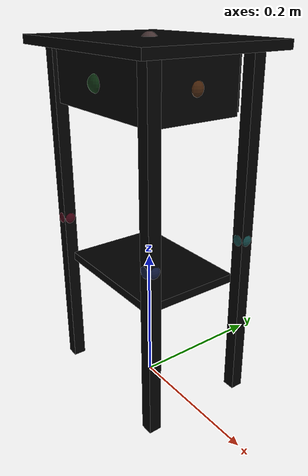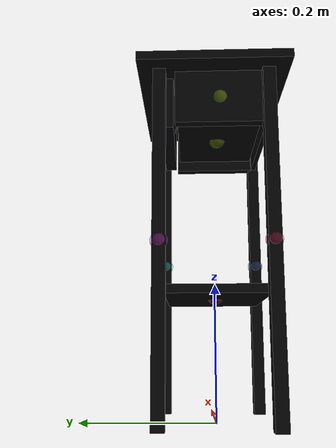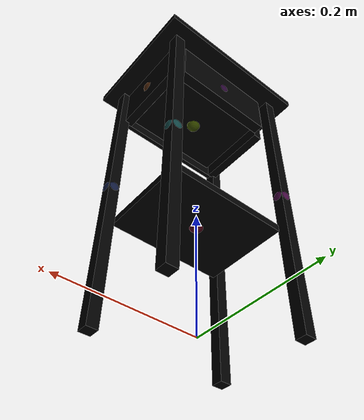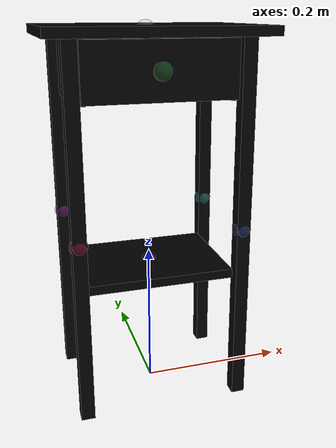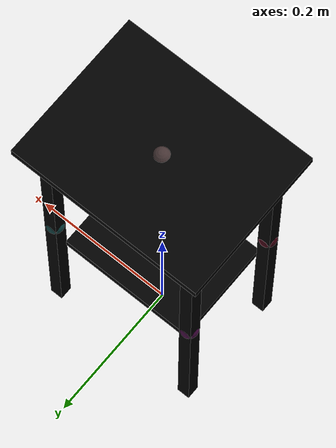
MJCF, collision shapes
<mujoco model="nightstand_2">
  <custom>
    <numeric data="-0.325755 -0.178171 0.006066 1.0 -0.0 0.0 0.0" name="0_part0_initpos" />
    <numeric data="-0.051426 -0.156712 0.005196 0.707105 0.707105 -0.001625 -0.001625" name="9_part9_initpos" />
    <numeric data="0.168591 0.026762 0.007734 0.707089 -0.005005 0.707089 0.005005" name="8_part8_initpos" />
    <numeric data="-0.029056 0.175695 0.008391 0.707107 -0.707107 -0.0 0.0" name="7_part7_initpos" />
    <numeric data="-0.232284 0.056541 0.005655 0.70663 -0.025975 -0.70663 -0.025974" name="6_part6_initpos" />
    <numeric data="0.426967 0.059525 0.006066 0.0 -0.998287 -0.058513 -0.0" name="5_part5_initpos" />
    <numeric data="0.087723 0.406904 0.00969 0.707107 4e-06 0.707107 -4e-06" name="4_part4_initpos" />
    <numeric data="-0.417659 0.288586 0.00969 0.707106 0.000879 0.707106 -0.000879" name="3_part3_initpos" />
    <numeric data="-0.457292 0.40313 0.008645 -3e-06 -0.707107 3e-06 -0.707107" name="2_part2_initpos" />
    <numeric data="-0.043002 0.021218 0.00297 1.0 0.0 -0.0 0.0" name="10_part10_initpos" />
    <numeric data="0.128936 0.314328 0.00909 0.012357 -0.706999 -0.012357 -0.706999" name="1_part1_initpos" />
  </custom>
  <asset>
    <mesh file="nightstand_2/0.stl" name="part0" scale="0.0006 0.0006 0.0006" />
    <mesh file="nightstand_2/9.stl" name="part9" scale="0.0006 0.0006 0.0006" />
    <mesh file="nightstand_2/8.stl" name="part8" scale="0.0006 0.0006 0.0006" />
    <mesh file="nightstand_2/7.stl" name="part7" scale="0.0006 0.0006 0.0006" />
    <mesh file="nightstand_2/6.stl" name="part6" scale="0.0006 0.0006 0.0006" />
    <mesh file="nightstand_2/5.stl" name="part5" scale="0.0006 0.0006 0.0006" />
    <mesh file="nightstand_2/4.stl" name="part4" scale="0.0006 0.0006 0.0006" />
    <mesh file="nightstand_2/3.stl" name="part3" scale="0.0006 0.0006 0.0006" />
    <mesh file="nightstand_2/2.stl" name="part2" scale="0.0006 0.0006 0.0006" />
    <mesh file="nightstand_2/10.stl" name="part10" scale="0.0006 0.0006 0.0006" />
    <mesh file="nightstand_2/1.stl" name="part1" scale="0.0006 0.0006 0.0006" />
  </asset>
  <worldbody><body name="combined_body" pos="0 0 0.1828399963378906" quat="1 0 0 0"><geom conaffinity="0" contype="0" density="0" mesh="part0" name="0_part0_mesh" pos="-7.8e-10 1.2e-10 -1.2e-10" rgba="0.82 0.71 0.55 1" type="mesh" quat="1 0 0 0" />
      <geom density="50" name="noviz_collision_0_part0_0" pos="-7.8e-10 1.2e-10 -1.2e-10" quat="1 0 0 0" rgba="0 0 0 0" size="0.09648000000000001 0.072141 0.00609567" solref="0.001 1" type="box" />
      <site name="0_part0_horizontal_radius_site" pos="-7.8e-10 1.2e-10 -1.2e-10" quat="1 0 0 0" rgba="0 0 0 0" size="0.0006" />
      <site name="0_part0_top_site" pos="-7.8e-10 1.2e-10 -1.2e-10" quat="1 0 0 0" rgba="0 0 0 0" size="0.0006" />
      <site name="0_part0_bottom_site" pos="-7.8e-10 1.2e-10 -1.2e-10" quat="1 0 0 0" rgba="0 0 0 0" size="0.0006" />
      <site name="0_part0_corner_site8" pos="-7.8e-10 1.2e-10 -1.2e-10" quat="1 0 0 0" rgba="0 0 0 0" size="0.012" />
      <site name="0_part0_corner_site7" pos="-7.8e-10 1.2e-10 -1.2e-10" quat="1 0 0 0" rgba="0 0 0 0" size="0.012" />
      <site name="0_part0_corner_site6" pos="-7.8e-10 1.2e-10 -1.2e-10" quat="1 0 0 0" rgba="0 0 0 0" size="0.012" />
      <site name="0_part0_corner_site5" pos="-7.8e-10 1.2e-10 -1.2e-10" quat="1 0 0 0" rgba="0 0 0 0" size="0.012" />
      <site name="0_part0_corner_site4" pos="-7.8e-10 1.2e-10 -1.2e-10" quat="1 0 0 0" rgba="0 0 0 0" size="0.012" />
      <site name="0_part0_corner_site3" pos="-7.8e-10 1.2e-10 -1.2e-10" quat="1 0 0 0" rgba="0 0 0 0" size="0.012" />
      <site name="0_part0_corner_site2" pos="-7.8e-10 1.2e-10 -1.2e-10" quat="1 0 0 0" rgba="0 0 0 0" size="0.012" />
      <site name="0_part0_corner_site1" pos="-7.8e-10 1.2e-10 -1.2e-10" quat="1 0 0 0" rgba="0 0 0 0" size="0.012" />
      <site name="legfrontleft-fllorbotleft,0,conn_site1" pos="-7.8e-10 1.2e-10 -1.2e-10" quat="1 0 0 0" rgba="0.9019 0.0980 0.2941 0.3" size="0.012" />
    <geom conaffinity="0" contype="0" density="0" mesh="part9" name="9_part9_mesh" pos="1.62e-09 -0.07391399862 0.26822400366000004" rgba="0.82 0.71 0.55 1" type="mesh" quat="1 0 0 0" />
      <geom density="50" name="noviz_collision_9_part9_0" pos="1.62e-09 -0.07391399862 0.26822400366000004" quat="1 0 0 0" rgba="0 0 0 0" size="0.096 0.0036 0.036" solref="0.001 1" type="box" />
      <site name="9_part9_horizontal_radius_site" pos="1.62e-09 -0.07391399862 0.26822400366000004" quat="1 0 0 0" rgba="0 0 0 0" size="0.0006" />
      <site name="9_part9_top_site" pos="1.62e-09 -0.07391399862 0.26822400366000004" quat="1 0 0 0" rgba="0 0 0 0" size="0.0006" />
      <site name="9_part9_bottom_site" pos="1.62e-09 -0.07391399862 0.26822400366000004" quat="1 0 0 0" rgba="0 0 0 0" size="0.0006" />
      <site name="9_part9_corner_site8" pos="1.62e-09 -0.07391399862 0.26822400366000004" quat="1 0 0 0" rgba="0 0 0 0" size="0.012" />
      <site name="9_part9_corner_site7" pos="1.62e-09 -0.07391399862 0.26822400366000004" quat="1 0 0 0" rgba="0 0 0 0" size="0.012" />
      <site name="9_part9_corner_site6" pos="1.62e-09 -0.07391399862 0.26822400366000004" quat="1 0 0 0" rgba="0 0 0 0" size="0.012" />
      <site name="9_part9_corner_site5" pos="1.62e-09 -0.07391399862 0.26822400366000004" quat="1 0 0 0" rgba="0 0 0 0" size="0.012" />
      <site name="9_part9_corner_site4" pos="1.62e-09 -0.07391399862 0.26822400366000004" quat="1 0 0 0" rgba="0 0 0 0" size="0.012" />
      <site name="9_part9_corner_site3" pos="1.62e-09 -0.07391399862 0.26822400366000004" quat="1 0 0 0" rgba="0 0 0 0" size="0.012" />
      <site name="9_part9_corner_site2" pos="1.62e-09 -0.07391399862 0.26822400366000004" quat="1 0 0 0" rgba="0 0 0 0" size="0.012" />
      <site name="9_part9_corner_site1" pos="1.62e-09 -0.07391399862 0.26822400366000004" quat="1 0 0 0" rgba="0 0 0 0" size="0.012" />
      <site name="frontdrawer-bottom,0,conn_site1" pos="1.62e-09 -0.07391399862 0.26822400366000004" quat="1 0 0 0" rgba="0.2352 0.7058 0.2941 0.3" size="0.012" />
      <site name="front-leftleg,0,conn_site1" pos="1.62e-09 -0.07391399862 0.26822400366000004" quat="1 0 0 0" rgba="1.0 0.8823 0.0980 0.3" size="0.012" />
      <site name="front-rightleg,0,conn_site1" pos="1.62e-09 -0.07391399862 0.26822400366000004" quat="1 0 0 0" rgba="0.2627 0.3882 0.8470 0.3" size="0.012" />
    <geom conaffinity="0" contype="0" density="0" mesh="part8" name="8_part8_mesh" pos="0.09715499658 -0.00609599646 0.26822400366000004" rgba="0.82 0.71 0.55 1" type="mesh" quat="1 0 0 0" />
      <geom density="50" name="noviz_collision_8_part8_0" pos="0.09715499658 -0.00609599646 0.26822400366000004" quat="1 0 0 0" rgba="0 0 0 0" size="0.0075 0.063 0.0381" solref="0.001 1" type="box" />
      <site name="8_part8_horizontal_radius_site" pos="0.09715499658 -0.00609599646 0.26822400366000004" quat="1 0 0 0" rgba="0 0 0 0" size="0.0006" />
      <site name="8_part8_top_site" pos="0.09715499658 -0.00609599646 0.26822400366000004" quat="1 0 0 0" rgba="0 0 0 0" size="0.0006" />
      <site name="8_part8_bottom_site" pos="0.09715499658 -0.00609599646 0.26822400366000004" quat="1 0 0 0" rgba="0 0 0 0" size="0.0006" />
      <site name="8_part8_corner_site8" pos="0.09715499658 -0.00609599646 0.26822400366000004" quat="1 0 0 0" rgba="0 0 0 0" size="0.012" />
      <site name="8_part8_corner_site7" pos="0.09715499658 -0.00609599646 0.26822400366000004" quat="1 0 0 0" rgba="0 0 0 0" size="0.012" />
      <site name="8_part8_corner_site6" pos="0.09715499658 -0.00609599646 0.26822400366000004" quat="1 0 0 0" rgba="0 0 0 0" size="0.012" />
      <site name="8_part8_corner_site5" pos="0.09715499658 -0.00609599646 0.26822400366000004" quat="1 0 0 0" rgba="0 0 0 0" size="0.012" />
      <site name="8_part8_corner_site4" pos="0.09715499658 -0.00609599646 0.26822400366000004" quat="1 0 0 0" rgba="0 0 0 0" size="0.012" />
      <site name="8_part8_corner_site3" pos="0.09715499658 -0.00609599646 0.26822400366000004" quat="1 0 0 0" rgba="0 0 0 0" size="0.012" />
      <site name="8_part8_corner_site2" pos="0.09715499658 -0.00609599646 0.26822400366000004" quat="1 0 0 0" rgba="0 0 0 0" size="0.012" />
      <site name="8_part8_corner_site1" pos="0.09715499658 -0.00609599646 0.26822400366000004" quat="1 0 0 0" rgba="0 0 0 0" size="0.012" />
      <site name="rightwall-bottom,0,conn_site1" pos="0.09715499658 -0.00609599646 0.26822400366000004" quat="1 0 0 0" rgba="0.9607 0.5098 0.1921 0.3" size="0.012" />
    <geom conaffinity="0" contype="0" density="0" mesh="part7" name="7_part7_mesh" pos="1.62e-09 0.0681989994 0.26822400366000004" rgba="0.82 0.71 0.55 1" type="mesh" quat="1 0 0 0" />
      <geom density="50" name="noviz_collision_7_part7_0" pos="1.62e-09 0.0681989994 0.26822400366000004" quat="1 0 0 0" rgba="0 0 0 0" size="0.087 0.0087 0.0375" solref="0.001 1" type="box" />
      <site name="7_part7_horizontal_radius_site" pos="1.62e-09 0.0681989994 0.26822400366000004" quat="1 0 0 0" rgba="0 0 0 0" size="0.0006" />
      <site name="7_part7_top_site" pos="1.62e-09 0.0681989994 0.26822400366000004" quat="1 0 0 0" rgba="0 0 0 0" size="0.0006" />
      <site name="7_part7_bottom_site" pos="1.62e-09 0.0681989994 0.26822400366000004" quat="1 0 0 0" rgba="0 0 0 0" size="0.0006" />
      <site name="7_part7_corner_site8" pos="1.62e-09 0.0681989994 0.26822400366000004" quat="1 0 0 0" rgba="0 0 0 0" size="0.012" />
      <site name="7_part7_corner_site7" pos="1.62e-09 0.0681989994 0.26822400366000004" quat="1 0 0 0" rgba="0 0 0 0" size="0.012" />
      <site name="7_part7_corner_site6" pos="1.62e-09 0.0681989994 0.26822400366000004" quat="1 0 0 0" rgba="0 0 0 0" size="0.012" />
      <site name="7_part7_corner_site5" pos="1.62e-09 0.0681989994 0.26822400366000004" quat="1 0 0 0" rgba="0 0 0 0" size="0.012" />
      <site name="7_part7_corner_site4" pos="1.62e-09 0.0681989994 0.26822400366000004" quat="1 0 0 0" rgba="0 0 0 0" size="0.012" />
      <site name="7_part7_corner_site3" pos="1.62e-09 0.0681989994 0.26822400366000004" quat="1 0 0 0" rgba="0 0 0 0" size="0.012" />
      <site name="7_part7_corner_site2" pos="1.62e-09 0.0681989994 0.26822400366000004" quat="1 0 0 0" rgba="0 0 0 0" size="0.012" />
      <site name="7_part7_corner_site1" pos="1.62e-09 0.0681989994 0.26822400366000004" quat="1 0 0 0" rgba="0 0 0 0" size="0.012" />
      <site name="back-bottom,0,conn_site1" pos="1.62e-09 0.0681989994 0.26822400366000004" quat="1 0 0 0" rgba="0.5686 0.1176 0.7058 0.3" size="0.012" />
      <site name="backwall-rightbackleg,0,conn_site1" pos="1.62e-09 0.0681989994 0.26822400366000004" quat="1 0 0 0" rgba="0.2745 0.9411 0.9411 0.3" size="0.012" />
      <site name="backwall-leftbackleg,0,conn_site1" pos="1.62e-09 0.0681989994 0.26822400366000004" quat="1 0 0 0" rgba="0.9411 0.1960 0.9019 0.3" size="0.012" />
    <geom conaffinity="0" contype="0" density="0" mesh="part6" name="6_part6_mesh" pos="-0.0971549991 -0.00609599646 0.26822400366000004" rgba="0.82 0.71 0.55 1" type="mesh" quat="1 0 0 0" />
      <geom density="50" name="noviz_collision_6_part6_0" pos="-0.0971549991 -0.00609599646 0.26822400366000004" quat="1 0 0 0" rgba="0 0 0 0" size="0.0075 0.063 0.0381" solref="0.001 1" type="box" />
      <site name="6_part6_horizontal_radius_site" pos="-0.0971549991 -0.00609599646 0.26822400366000004" quat="1 0 0 0" rgba="0 0 0 0" size="0.0006" />
      <site name="6_part6_top_site" pos="-0.0971549991 -0.00609599646 0.26822400366000004" quat="1 0 0 0" rgba="0 0 0 0" size="0.0006" />
      <site name="6_part6_bottom_site" pos="-0.0971549991 -0.00609599646 0.26822400366000004" quat="1 0 0 0" rgba="0 0 0 0" size="0.0006" />
      <site name="6_part6_corner_site8" pos="-0.0971549991 -0.00609599646 0.26822400366000004" quat="1 0 0 0" rgba="0 0 0 0" size="0.012" />
      <site name="6_part6_corner_site7" pos="-0.0971549991 -0.00609599646 0.26822400366000004" quat="1 0 0 0" rgba="0 0 0 0" size="0.012" />
      <site name="6_part6_corner_site6" pos="-0.0971549991 -0.00609599646 0.26822400366000004" quat="1 0 0 0" rgba="0 0 0 0" size="0.012" />
      <site name="6_part6_corner_site5" pos="-0.0971549991 -0.00609599646 0.26822400366000004" quat="1 0 0 0" rgba="0 0 0 0" size="0.012" />
      <site name="6_part6_corner_site4" pos="-0.0971549991 -0.00609599646 0.26822400366000004" quat="1 0 0 0" rgba="0 0 0 0" size="0.012" />
      <site name="6_part6_corner_site3" pos="-0.0971549991 -0.00609599646 0.26822400366000004" quat="1 0 0 0" rgba="0 0 0 0" size="0.012" />
      <site name="6_part6_corner_site2" pos="-0.0971549991 -0.00609599646 0.26822400366000004" quat="1 0 0 0" rgba="0 0 0 0" size="0.012" />
      <site name="6_part6_corner_site1" pos="-0.0971549991 -0.00609599646 0.26822400366000004" quat="1 0 0 0" rgba="0 0 0 0" size="0.012" />
      <site name="leftwall-bottom,0,conn_site1" pos="-0.0971549991 -0.00609599646 0.26822400366000004" quat="1 0 0 0" rgba="0.7372 0.9647 0.0470 0.3" size="0.012" />
    <geom conaffinity="0" contype="0" density="0" mesh="part5" name="5_part5_mesh" pos="2.4e-10 0.00228600012 0.31242000366" rgba="0.82 0.71 0.55 1" type="mesh" quat="1 0 0 0" />
      <geom density="50" name="noviz_collision_5_part5_0" pos="2.4e-10 0.00228600012 0.31242000366" quat="1 0 0 0" rgba="0 0 0 0" size="0.13716 0.10668000000000001 0.006096" solref="0.001 1" type="box" />
      <site name="5_part5_horizontal_radius_site" pos="2.4e-10 0.00228600012 0.31242000366" quat="1 0 0 0" rgba="0 0 0 0" size="0.0006" />
      <site name="5_part5_top_site" pos="2.4e-10 0.00228600012 0.31242000366" quat="1 0 0 0" rgba="0 0 0 0" size="0.0006" />
      <site name="5_part5_bottom_site" pos="2.4e-10 0.00228600012 0.31242000366" quat="1 0 0 0" rgba="0 0 0 0" size="0.0006" />
      <site name="5_part5_corner_site8" pos="2.4e-10 0.00228600012 0.31242000366" quat="1 0 0 0" rgba="0 0 0 0" size="0.012" />
      <site name="5_part5_corner_site7" pos="2.4e-10 0.00228600012 0.31242000366" quat="1 0 0 0" rgba="0 0 0 0" size="0.012" />
      <site name="5_part5_corner_site6" pos="2.4e-10 0.00228600012 0.31242000366" quat="1 0 0 0" rgba="0 0 0 0" size="0.012" />
      <site name="5_part5_corner_site5" pos="2.4e-10 0.00228600012 0.31242000366" quat="1 0 0 0" rgba="0 0 0 0" size="0.012" />
      <site name="5_part5_corner_site4" pos="2.4e-10 0.00228600012 0.31242000366" quat="1 0 0 0" rgba="0 0 0 0" size="0.012" />
      <site name="5_part5_corner_site3" pos="2.4e-10 0.00228600012 0.31242000366" quat="1 0 0 0" rgba="0 0 0 0" size="0.012" />
      <site name="5_part5_corner_site2" pos="2.4e-10 0.00228600012 0.31242000366" quat="1 0 0 0" rgba="0 0 0 0" size="0.012" />
      <site name="5_part5_corner_site1" pos="2.4e-10 0.00228600012 0.31242000366" quat="1 0 0 0" rgba="0 0 0 0" size="0.012" />
      <site name="top-leftleg,0,conn_site1" pos="2.4e-10 0.00228600012 0.31242000366" quat="1 0 0 0" rgba="0.9803 0.7450 0.7450 0.3" size="0.012" />
    <geom conaffinity="0" contype="0" density="0" mesh="part4" name="4_part4_mesh" pos="0.10668000413999999 -0.0739139994 0.062484003659999995" rgba="0.82 0.71 0.55 1" type="mesh" quat="1 0 0 0" />
      <geom density="50" name="noviz_collision_4_part4_0" pos="0.10668000413999999 -0.0739139994 0.062484003659999995" quat="1 0 0 0" rgba="0 0 0 0" size="0.009 0.009 0.243" solref="0.001 1" type="box" />
      <site name="4_part4_horizontal_radius_site" pos="0.10668000413999999 -0.0739139994 0.062484003659999995" quat="1 0 0 0" rgba="0 0 0 0" size="0.0006" />
      <site name="4_part4_top_site" pos="0.10668000413999999 -0.0739139994 0.062484003659999995" quat="1 0 0 0" rgba="0 0 0 0" size="0.0006" />
      <site name="4_part4_bottom_site" pos="0.10668000413999999 -0.0739139994 0.062484003659999995" quat="1 0 0 0" rgba="0 0 0 0" size="0.0006" />
      <site name="4_part4_corner_site8" pos="0.10668000413999999 -0.0739139994 0.062484003659999995" quat="1 0 0 0" rgba="0 0 0 0" size="0.012" />
      <site name="4_part4_corner_site7" pos="0.10668000413999999 -0.0739139994 0.062484003659999995" quat="1 0 0 0" rgba="0 0 0 0" size="0.012" />
      <site name="4_part4_corner_site6" pos="0.10668000413999999 -0.0739139994 0.062484003659999995" quat="1 0 0 0" rgba="0 0 0 0" size="0.012" />
      <site name="4_part4_corner_site5" pos="0.10668000413999999 -0.0739139994 0.062484003659999995" quat="1 0 0 0" rgba="0 0 0 0" size="0.012" />
      <site name="4_part4_corner_site4" pos="0.10668000413999999 -0.0739139994 0.062484003659999995" quat="1 0 0 0" rgba="0 0 0 0" size="0.012" />
      <site name="4_part4_corner_site3" pos="0.10668000413999999 -0.0739139994 0.062484003659999995" quat="1 0 0 0" rgba="0 0 0 0" size="0.012" />
      <site name="4_part4_corner_site2" pos="0.10668000413999999 -0.0739139994 0.062484003659999995" quat="1 0 0 0" rgba="0 0 0 0" size="0.012" />
      <site name="4_part4_corner_site1" pos="0.10668000413999999 -0.0739139994 0.062484003659999995" quat="1 0 0 0" rgba="0 0 0 0" size="0.012" />
      <site name="rightleg-front,0,conn_site1" pos="0.10668000413999999 -0.0739139994 0.062484003659999995" quat="1 0 0 0" rgba="0.2627 0.3882 0.8470 0.3" size="0.012" />
    <geom conaffinity="0" contype="0" density="0" mesh="part3" name="3_part3_mesh" pos="0.10668000413999999 0.07848599412 0.062484003659999995" rgba="0.82 0.71 0.55 1" type="mesh" quat="1 0 0 0" />
      <geom density="50" name="noviz_collision_3_part3_0" pos="0.10668000413999999 0.07848599412 0.062484003659999995" quat="1 0 0 0" rgba="0 0 0 0" size="0.009 0.009 0.243" solref="0.001 1" type="box" />
      <site name="3_part3_horizontal_radius_site" pos="0.10668000413999999 0.07848599412 0.062484003659999995" quat="1 0 0 0" rgba="0 0 0 0" size="0.0006" />
      <site name="3_part3_top_site" pos="0.10668000413999999 0.07848599412 0.062484003659999995" quat="1 0 0 0" rgba="0 0 0 0" size="0.0006" />
      <site name="3_part3_bottom_site" pos="0.10668000413999999 0.07848599412 0.062484003659999995" quat="1 0 0 0" rgba="0 0 0 0" size="0.0006" />
      <site name="3_part3_corner_site8" pos="0.10668000413999999 0.07848599412 0.062484003659999995" quat="1 0 0 0" rgba="0 0 0 0" size="0.012" />
      <site name="3_part3_corner_site7" pos="0.10668000413999999 0.07848599412 0.062484003659999995" quat="1 0 0 0" rgba="0 0 0 0" size="0.012" />
      <site name="3_part3_corner_site6" pos="0.10668000413999999 0.07848599412 0.062484003659999995" quat="1 0 0 0" rgba="0 0 0 0" size="0.012" />
      <site name="3_part3_corner_site5" pos="0.10668000413999999 0.07848599412 0.062484003659999995" quat="1 0 0 0" rgba="0 0 0 0" size="0.012" />
      <site name="3_part3_corner_site4" pos="0.10668000413999999 0.07848599412 0.062484003659999995" quat="1 0 0 0" rgba="0 0 0 0" size="0.012" />
      <site name="3_part3_corner_site3" pos="0.10668000413999999 0.07848599412 0.062484003659999995" quat="1 0 0 0" rgba="0 0 0 0" size="0.012" />
      <site name="3_part3_corner_site2" pos="0.10668000413999999 0.07848599412 0.062484003659999995" quat="1 0 0 0" rgba="0 0 0 0" size="0.012" />
      <site name="3_part3_corner_site1" pos="0.10668000413999999 0.07848599412 0.062484003659999995" quat="1 0 0 0" rgba="0 0 0 0" size="0.012" />
      <site name="rightbackleg-backwall,0,conn_site1" pos="0.10668000413999999 0.07848599412 0.062484003659999995" quat="1 0 0 0" rgba="0.2745 0.9411 0.9411 0.3" size="0.012" />
    <geom conaffinity="0" contype="0" density="0" mesh="part2" name="2_part2_mesh" pos="-0.10667999976 -0.0739139994 0.062484003659999995" rgba="0.82 0.71 0.55 1" type="mesh" quat="1 0 0 0" />
      <geom density="50" name="noviz_collision_2_part2_0" pos="-0.10667999976 -0.0739139994 0.062484003659999995" quat="1 0 0 0" rgba="0 0 0 0" size="0.009 0.009 0.243" solref="0.001 1" type="box" />
      <site name="2_part2_horizontal_radius_site" pos="-0.10667999976 -0.0739139994 0.062484003659999995" quat="1 0 0 0" rgba="0 0 0 0" size="0.0006" />
      <site name="2_part2_top_site" pos="-0.10667999976 -0.0739139994 0.062484003659999995" quat="1 0 0 0" rgba="0 0 0 0" size="0.0006" />
      <site name="2_part2_bottom_site" pos="-0.10667999976 -0.0739139994 0.062484003659999995" quat="1 0 0 0" rgba="0 0 0 0" size="0.0006" />
      <site name="2_part2_corner_site8" pos="-0.10667999976 -0.0739139994 0.062484003659999995" quat="1 0 0 0" rgba="0 0 0 0" size="0.012" />
      <site name="2_part2_corner_site7" pos="-0.10667999976 -0.0739139994 0.062484003659999995" quat="1 0 0 0" rgba="0 0 0 0" size="0.012" />
      <site name="2_part2_corner_site6" pos="-0.10667999976 -0.0739139994 0.062484003659999995" quat="1 0 0 0" rgba="0 0 0 0" size="0.012" />
      <site name="2_part2_corner_site5" pos="-0.10667999976 -0.0739139994 0.062484003659999995" quat="1 0 0 0" rgba="0 0 0 0" size="0.012" />
      <site name="2_part2_corner_site4" pos="-0.10667999976 -0.0739139994 0.062484003659999995" quat="1 0 0 0" rgba="0 0 0 0" size="0.012" />
      <site name="2_part2_corner_site3" pos="-0.10667999976 -0.0739139994 0.062484003659999995" quat="1 0 0 0" rgba="0 0 0 0" size="0.012" />
      <site name="2_part2_corner_site2" pos="-0.10667999976 -0.0739139994 0.062484003659999995" quat="1 0 0 0" rgba="0 0 0 0" size="0.012" />
      <site name="2_part2_corner_site1" pos="-0.10667999976 -0.0739139994 0.062484003659999995" quat="1 0 0 0" rgba="0 0 0 0" size="0.012" />
      <site name="fllorbotleft-legfrontleft,0,conn_site1" pos="-0.10667999976 -0.0739139994 0.062484003659999995" quat="1 0 0 0" rgba="0.9019 0.0980 0.2941 0.3" size="0.012" />
      <site name="leftleg-front,0,conn_site1" pos="-0.10667999976 -0.0739139994 0.062484003659999995" quat="1 0 0 0" rgba="1.0 0.8823 0.0980 0.3" size="0.012" />
      <site name="leftleg-top,0,conn_site1" pos="-0.10667999976 -0.0739139994 0.062484003659999995" quat="1 0 0 0" rgba="0.9803 0.7450 0.7450 0.3" size="0.012" />
    <geom conaffinity="0" contype="0" density="0" mesh="part10" name="10_part10_mesh" pos="2.4e-10 -0.00647699892 0.24765000366" rgba="0.82 0.71 0.55 1" type="mesh" quat="1 0 0 0" />
      <geom density="50" name="noviz_collision_10_part10_0" pos="2.4e-10 -0.00647699892 0.24765000366" quat="1 0 0 0" rgba="0 0 0 0" size="0.084 0.06 0.003" solref="0.001 1" type="box" />
    <site name="10_part10_horizontal_radius_site" pos="2.4e-10 -0.00647699892 0.24765000366" quat="1 0 0 0" rgba="0 0 0 0" size="0.0006" />
      <site name="10_part10_top_site" pos="2.4e-10 -0.00647699892 0.24765000366" quat="1 0 0 0" rgba="0 0 0 0" size="0.0006" />
      <site name="10_part10_bottom_site" pos="2.4e-10 -0.00647699892 0.24765000366" quat="1 0 0 0" rgba="0 0 0 0" size="0.0006" />
      <site name="10_part10_corner_site8" pos="2.4e-10 -0.00647699892 0.24765000366" quat="1 0 0 0" rgba="0 0 0 0" size="0.012" />
      <site name="10_part10_corner_site7" pos="2.4e-10 -0.00647699892 0.24765000366" quat="1 0 0 0" rgba="0 0 0 0" size="0.012" />
      <site name="10_part10_corner_site6" pos="2.4e-10 -0.00647699892 0.24765000366" quat="1 0 0 0" rgba="0 0 0 0" size="0.012" />
      <site name="10_part10_corner_site5" pos="2.4e-10 -0.00647699892 0.24765000366" quat="1 0 0 0" rgba="0 0 0 0" size="0.012" />
      <site name="10_part10_corner_site4" pos="2.4e-10 -0.00647699892 0.24765000366" quat="1 0 0 0" rgba="0 0 0 0" size="0.012" />
      <site name="10_part10_corner_site3" pos="2.4e-10 -0.00647699892 0.24765000366" quat="1 0 0 0" rgba="0 0 0 0" size="0.012" />
      <site name="10_part10_corner_site2" pos="2.4e-10 -0.00647699892 0.24765000366" quat="1 0 0 0" rgba="0 0 0 0" size="0.012" />
      <site name="10_part10_corner_site1" pos="2.4e-10 -0.00647699892 0.24765000366" quat="1 0 0 0" rgba="0 0 0 0" size="0.012" />
      <site name="bottom-leftwall,0,conn_site1" pos="2.4e-10 -0.00647699892 0.24765000366" quat="1 0 0 0" rgba="0.7372 0.9647 0.0470 0.3" size="0.012" />
      <site name="bottom-rightwall,0,conn_site1" pos="2.4e-10 -0.00647699892 0.24765000366" quat="1 0 0 0" rgba="0.9607 0.5098 0.1921 0.3" size="0.012" />
      <site name="bottom-frontdrawer,0,conn_site1" pos="2.4e-10 -0.00647699892 0.24765000366" quat="1 0 0 0" rgba="0.2352 0.7058 0.2941 0.3" size="0.012" />
      <site name="bottom-back,0,conn_site1" pos="2.4e-10 -0.00647699892 0.24765000366" quat="1 0 0 0" rgba="0.5686 0.1176 0.7058 0.3" size="0.012" />
      <geom conaffinity="0" contype="0" density="0" mesh="part1" name="1_part1_mesh" pos="-0.10667999976 0.07848599412 0.062484003659999995" rgba="0.82 0.71 0.55 1" type="mesh" quat="1 0 0 0" />
      <geom density="50" name="noviz_collision_1_part1_0" pos="-0.10667999976 0.07848599412 0.062484003659999995" quat="1 0 0 0" rgba="0 0 0 0" size="0.009 0.009 0.243" solref="0.001 1" type="box" />
      <site name="1_part1_horizontal_radius_site" pos="-0.10667999976 0.07848599412 0.062484003659999995" quat="1 0 0 0" rgba="0 0 0 0" size="0.0006" />
      <site name="1_part1_top_site" pos="-0.10667999976 0.07848599412 0.062484003659999995" quat="1 0 0 0" rgba="0 0 0 0" size="0.0006" />
      <site name="1_part1_bottom_site" pos="-0.10667999976 0.07848599412 0.062484003659999995" quat="1 0 0 0" rgba="0 0 0 0" size="0.0006" />
      <site name="1_part1_corner_site8" pos="-0.10667999976 0.07848599412 0.062484003659999995" quat="1 0 0 0" rgba="0 0 0 0" size="0.012" />
      <site name="1_part1_corner_site7" pos="-0.10667999976 0.07848599412 0.062484003659999995" quat="1 0 0 0" rgba="0 0 0 0" size="0.012" />
      <site name="1_part1_corner_site6" pos="-0.10667999976 0.07848599412 0.062484003659999995" quat="1 0 0 0" rgba="0 0 0 0" size="0.012" />
      <site name="1_part1_corner_site5" pos="-0.10667999976 0.07848599412 0.062484003659999995" quat="1 0 0 0" rgba="0 0 0 0" size="0.012" />
      <site name="1_part1_corner_site4" pos="-0.10667999976 0.07848599412 0.062484003659999995" quat="1 0 0 0" rgba="0 0 0 0" size="0.012" />
      <site name="1_part1_corner_site3" pos="-0.10667999976 0.07848599412 0.062484003659999995" quat="1 0 0 0" rgba="0 0 0 0" size="0.012" />
      <site name="1_part1_corner_site2" pos="-0.10667999976 0.07848599412 0.062484003659999995" quat="1 0 0 0" rgba="0 0 0 0" size="0.012" />
      <site name="1_part1_corner_site1" pos="-0.10667999976 0.07848599412 0.062484003659999995" quat="1 0 0 0" rgba="0 0 0 0" size="0.012" />
      <site name="leftbackleg-backwall,0,conn_site1" pos="-0.10667999976 0.07848599412 0.062484003659999995" quat="1 0 0 0" rgba="0.9411 0.1960 0.9019 0.3" size="0.012" />
    </body></worldbody><actuator />
  <sensor />
  <contact />
  <default />
</mujoco>
